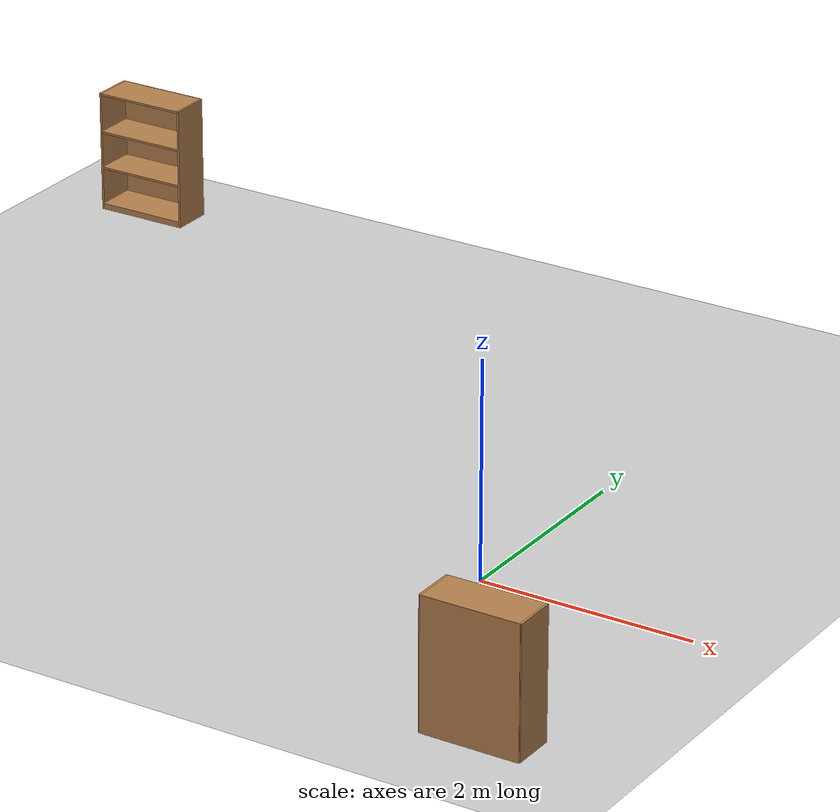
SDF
<sdf version="1.3">
 <world name="default">
  <physics type="ode">
   <gravity>0 0 -9.81</gravity>
   <update_rate>1000</update_rate>
   <ode>
    <solver><type>quick</type><dt>0.001</dt><iters>50</iters><sor>1.0</sor></solver>
    <constraints>
     <cfm>0.0</cfm>
     <erp>0.2</erp>
     <contact_max_correcting_vel>100.0</contact_max_correcting_vel>
     <contact_surface_layer>0.0</contact_surface_layer>
    </constraints>
   </ode>
  </physics>
  <include><uri>model://sun</uri></include>
  <include><uri>model://ground_plane</uri></include>
  <include><uri>model://reemc_bookshelf</uri><pose>-6.81 5.22 0 0 0 0</pose></include>
  <include>
   <uri>model://reemc_bookshelf</uri>
   <pose>1.4 -2.45 0 0 0 3.1415</pose>
   <name>bookshelf2</name>
  </include>
 </world>
</sdf>

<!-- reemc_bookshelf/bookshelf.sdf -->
<sdf version='1.3'>
<model name='bookshelf'>
      <static>1</static>
      <link name='link'>
        <inertial>
          <mass>1.000000</mass>
        </inertial>
        <collision name='back'>
          <pose>0.000000 0.005000 0.600000 0.000000 0.000000 0.000000</pose>
          <geometry>
            <box>
              <size>0.900000 0.010000 1.200000</size>
            </box>
          </geometry>
          <surface>
            <bounce/>
            <friction>
              <ode/>
            </friction>
            <contact>
              <ode/>
            </contact>
          </surface>
        </collision>
        <visual name='visual1'>
          <pose>0.000000 0.005000 0.600000 0.000000 0.000000 0.000000</pose>
          <geometry>
            <box>
              <size>0.900000 0.010000 1.200000</size>
            </box>
          </geometry>
          <material>
            <script>
              <uri>file://media/materials/scripts/gazebo.material</uri>
              <name>Gazebo/Wood</name>
            </script>
          </material>
        </visual>
        <collision name='left_side'>
          <pose>0.450000 -0.195000 0.600000 0.000000 0.000000 0.000000</pose>
          <geometry>
            <box>
              <size>0.020000 0.400000 1.200000</size>
            </box>
          </geometry>
          <surface>
            <bounce/>
            <friction>
              <ode/>
            </friction>
            <contact>
              <ode/>
            </contact>
          </surface>
        </collision>
        <visual name='visual2'>
          <pose>0.450000 -0.195000 0.600000 0.000000 0.000000 0.000000</pose>
          <geometry>
            <box>
              <size>0.020000 0.400000 1.200000</size>
            </box>
          </geometry>
          <material>
            <script>
              <uri>file://media/materials/scripts/gazebo.material</uri>
              <name>Gazebo/Wood</name>
            </script>
          </material>
        </visual>
        <collision name='right_side'>
          <pose>-0.450000 -0.195000 0.600000 0.000000 0.000000 0.000000</pose>
          <geometry>
            <box>
              <size>0.020000 0.400000 1.200000</size>
            </box>
          </geometry>
          <surface>
            <bounce/>
            <friction>
              <ode/>
            </friction>
            <contact>
              <ode/>
            </contact>
          </surface>
        </collision>
        <visual name='visual3'>
          <pose>-0.450000 -0.195000 0.600000 0.000000 0.000000 0.000000</pose>
          <geometry>
            <box>
              <size>0.020000 0.400000 1.200000</size>
            </box>
          </geometry>
          <material>
            <script>
              <uri>file://media/materials/scripts/gazebo.material</uri>
              <name>Gazebo/Wood</name>
            </script>
          </material>
        </visual>
        <collision name='bottom'>
          <pose>0.000000 -0.195000 0.030000 0.000000 0.000000 0.000000</pose>
          <geometry>
            <box>
              <size>0.880000 0.400000 0.060000</size>
            </box>
          </geometry>
          <surface>
            <bounce/>
            <friction>
              <ode/>
            </friction>
            <contact>
              <ode/>
            </contact>
          </surface>
        </collision>
        <visual name='visual4'>
          <pose>0.000000 -0.195000 0.030000 0.000000 0.000000 0.000000</pose>
          <geometry>
            <box>
              <size>0.880000 0.400000 0.060000</size>
            </box>
          </geometry>
          <material>
            <script>
              <uri>file://media/materials/scripts/gazebo.material</uri>
              <name>Gazebo/Wood</name>
            </script>
          </material>
        </visual>
        <collision name='top'>
          <pose>0.000000 -0.195000 1.190000 0.000000 0.000000 0.000000</pose>
          <geometry>
            <box>
              <size>0.880000 0.400000 0.020000</size>
            </box>
          </geometry>
          <surface>
            <bounce/>
            <friction>
              <ode/>
            </friction>
            <contact>
              <ode/>
            </contact>
          </surface>
        </collision>
        <visual name='visual5'>
          <pose>0.000000 -0.195000 1.190000 0.000000 0.000000 0.000000</pose>
          <geometry>
            <box>
              <size>0.880000 0.400000 0.020000</size>
            </box>
          </geometry>
          <material>
            <script>
              <uri>file://media/materials/scripts/gazebo.material</uri>
              <name>Gazebo/Wood</name>
            </script>
          </material>
        </visual>
        <collision name='low_shelf'>
          <pose>0.000000 -0.195000 0.430000 0.000000 0.000000 0.000000</pose>
          <geometry>
            <box>
              <size>0.880000 0.400000 0.020000</size>
            </box>
          </geometry>
          <surface>
            <bounce/>
            <friction>
              <ode/>
            </friction>
            <contact>
              <ode/>
            </contact>
          </surface>
        </collision>
        <visual name='visual6'>
          <pose>0.000000 -0.195000 0.430000 0.000000 0.000000 0.000000</pose>
          <geometry>
            <box>
              <size>0.880000 0.400000 0.020000</size>
            </box>
          </geometry>
          <material>
            <script>
              <uri>file://media/materials/scripts/gazebo.material</uri>
              <name>Gazebo/Wood</name>
            </script>
          </material>
        </visual>
        <collision name='high_shelf'>
          <pose>0.000000 -0.195000 0.800000 0.000000 0.000000 0.000000</pose>
          <geometry>
            <box>
              <size>0.880000 0.400000 0.020000</size>
            </box>
          </geometry>
          <surface>
            <bounce/>
            <friction>
              <ode/>
            </friction>
            <contact>
              <ode/>
            </contact>
          </surface>
        </collision>
        <visual name='visual7'>
          <pose>0.000000 -0.195000 0.800000 0.000000 0.000000 0.000000</pose>
          <geometry>
            <box>
              <size>0.880000 0.400000 0.020000</size>
            </box>
          </geometry>
          <material>
            <script>
              <uri>file://media/materials/scripts/gazebo.material</uri>
              <name>Gazebo/Wood</name>
            </script>
          </material>
        </visual>
        <velocity_decay>
          <linear>0.000000</linear>
          <angular>0.000000</angular>
        </velocity_decay>
        <self_collide>0</self_collide>
        <kinematic>0</kinematic>
        <gravity>1</gravity>
      </link>
    </model>
</sdf>
